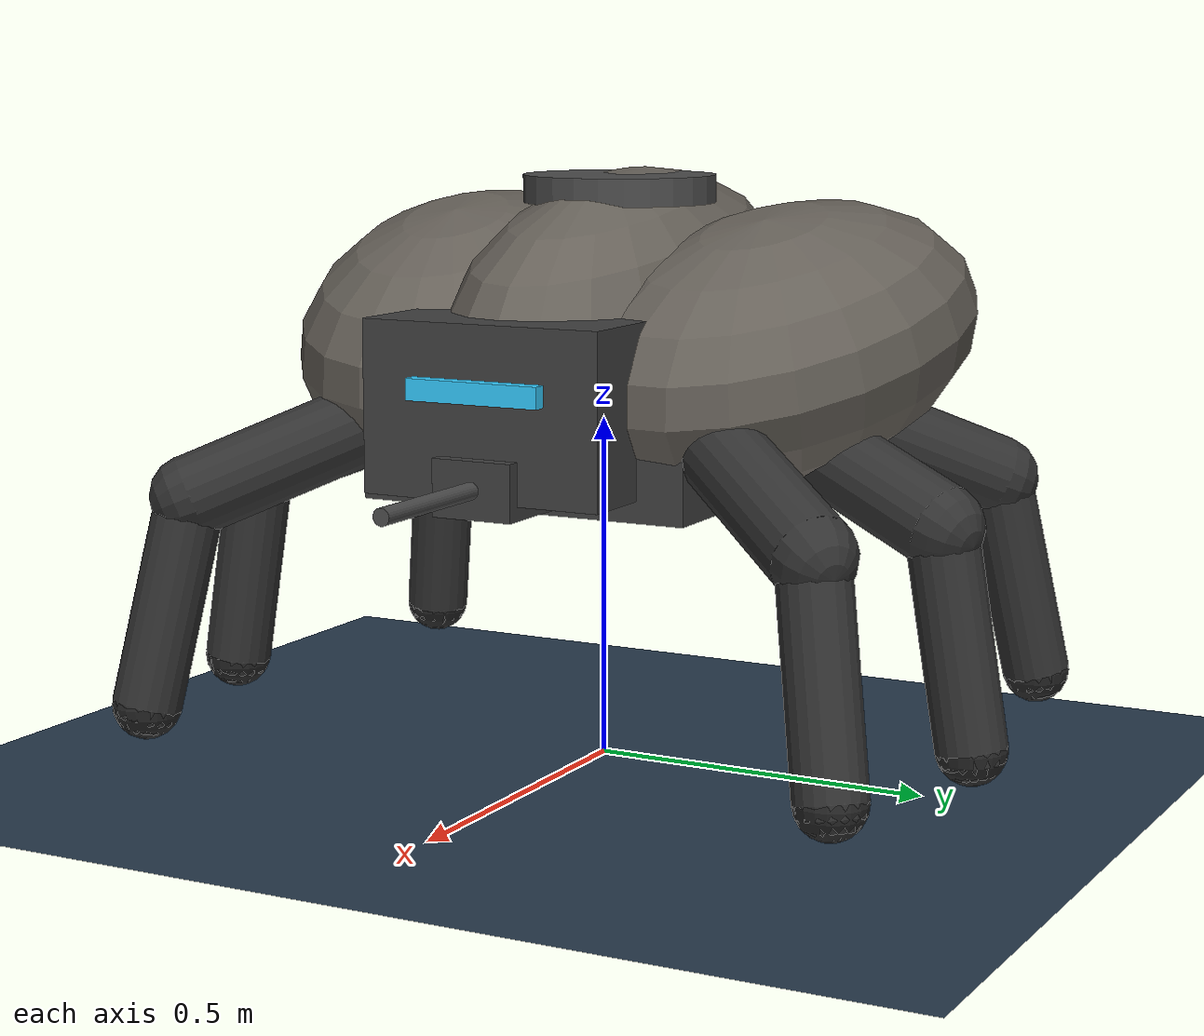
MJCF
<mujoco model="bastion">
  <compiler angle="degree" coordinate="local" inertiafromgeom="true"/>

  <option integrator="implicitfast" timestep="0.002" solver="Newton" iterations="200">
    <flag filterparent="enable"/>
  </option>

  <visual>
    <global offwidth="1200" offheight="800"/>
  </visual>

  <custom>
    <numeric data="0.0 0.0 0.50 1.0 0.0 0.0 0.0  0 0  0 0  0 0  0 0  0 0  0 0" name="init_qpos"/>
  </custom>

  <default>
    <joint armature="1" damping="1" limited="true"/>
    <default class="ankle">
      <joint armature="2" damping="10"/>
    </default>
    <geom conaffinity="0" condim="3" density="25.0" friction="1 0.5 0.5" margin="0.01" rgba="0.5 0.5 0.5 1"/>
  </default>

  <asset>
    <texture builtin="gradient" height="100" rgb1="1 1 1" rgb2="0.6 0.6 0.8" type="skybox" width="100"/>
    <texture builtin="checker" height="100" name="texplane" rgb1="0.2 0.3 0.4" rgb2="0.1 0.15 0.2" type="2d" width="100"/>
    <material name="MatPlane" reflectance="0.5" shininess="1" specular="1" texrepeat="60 60" texture="texplane"/>
    <material name="base_mat" rgba="0.25 0.25 0.25 1" specular="0.7" shininess="0.4"/>
    <material name="head_mat" rgba="0.30 0.30 0.30 1" specular="0.9" shininess="0.6"/>
    <material name="armor_mat" rgba="0.4 0.38 0.35 1" specular="0.8" shininess="0.5"/>
    <material name="leg_mat" rgba="0.20 0.20 0.20 1" specular="0.6" shininess="0.3"/>
    <material name="joint_glow" rgba="0.85 0.7 0.15 1" emission="0.5"/>
    <material name="eye_mat" rgba="0.2 0.8 1.0 1" emission="0.8"/>
    <material name="foot_mat" rgba="0.15 0.15 0.15 1" specular="0.5"/>
  </asset>

  <worldbody>
    <light cutoff="100" diffuse="1 1 1" dir="0 0 -1.3" directional="true" exponent="1" pos="0 0 1.3" specular="0.1 0.1 0.1"/>
    <geom conaffinity="1" condim="3" material="MatPlane" name="floor" pos="0 0 0" size="40 40 40" type="plane"/>

    <body name="torso" pos="0 0 0.50">
      <camera name="track" mode="trackcom" pos="0 -5 2" xyaxes="1 0 0 0 0.5 1"/>
      <joint armature="0" damping="0" limited="false" margin="0.01" name="root" pos="0 0 0" type="free"/>
      <site name="torso_site" pos="0 0 0" size="0.01"/>

      <geom name="chassis" type="box" size="0.25 0.25 0.10" material="base_mat"/>

      <geom name="carapace_center" type="ellipsoid" size="0.38 0.20 0.20" pos="-0.05 0 0.15" euler="0 10 0" material="armor_mat" contype="0" conaffinity="0" mass="3.0"/>
      <geom name="carapace_left" type="ellipsoid" size="0.35 0.25 0.18" pos="-0.05 0.25 0.12" euler="0 15 -15" material="armor_mat" contype="0" conaffinity="0" mass="0"/>
      <geom name="carapace_right" type="ellipsoid" size="0.35 0.25 0.18" pos="-0.05 -0.25 0.12" euler="0 15 15" material="armor_mat" contype="0" conaffinity="0" mass="0"/>

      <geom name="top_hatch" type="cylinder" size="0.14 0.02" pos="-0.05 0 0.33" material="head_mat" contype="0" conaffinity="0" mass="0"/>

      <geom name="face_shield" type="box" size="0.10 0.18 0.12" pos="0.26 0 0.05" material="base_mat" contype="0" conaffinity="0" mass="0"/>
      <geom name="eye_slit" type="box" size="0.02 0.10 0.015" pos="0.36 0 0.08" material="eye_mat" contype="0" conaffinity="0" mass="0"/>

      <geom name="gun_base" type="box" size="0.08 0.06 0.04" pos="0.30 0 -0.05" material="base_mat" contype="0" conaffinity="0" mass="0"/>
      <geom name="gun_barrel" type="cylinder" size="0.012 0.15" pos="0.45 0 -0.05" euler="0 90 0" material="head_mat" contype="0" conaffinity="0" mass="0"/>

      <body name="l1_upper" pos="0.20 0.28 0">
        <joint name="l1_hip" type="hinge" axis="0 0 1" range="-30 30" pos="0 0 0"/>
        <geom name="l1_upper_geom" fromto="0 0 0 0.15 0.20 -0.10" size="0.06" type="capsule" material="leg_mat"/>
        <geom name="l1_hip_glow" type="cylinder" size="0.04 0.02" pos="0 0 0" material="joint_glow" contype="0" conaffinity="0" mass="0"/>
        <body name="l1_lower" pos="0.15 0.20 -0.10">
          <joint name="l1_ankle" class="ankle" type="hinge" axis="1 -1 0" range="0 100" pos="0 0 0"/>
          <geom name="l1_lower_geom" fromto="0 0 0 0.05 0.05 -0.30" size="0.05" type="capsule" material="leg_mat"/>
          <geom name="l1_ankle_glow" type="cylinder" size="0.035 0.02" pos="0 0 0" euler="0 90 45" material="joint_glow" contype="0" conaffinity="0" mass="0"/>
          <body name="l1_foot" pos="0.05 0.05 -0.30">
            <geom name="l1_foot_geom" type="sphere" size="0.05" material="foot_mat"/>
          </body>
        </body>
      </body>

      <body name="l2_upper" pos="0 0.30 0">
        <joint name="l2_hip" type="hinge" axis="0 0 1" range="-45 45" pos="0 0 0"/>
        <geom name="l2_upper_geom" fromto="0 0 0 0.08 0.25 -0.10" size="0.06" type="capsule" material="leg_mat"/>
        <geom name="l2_hip_glow" type="cylinder" size="0.04 0.02" pos="0 0 0" material="joint_glow" contype="0" conaffinity="0" mass="0"/>
        <body name="l2_lower" pos="0.08 0.25 -0.10">
          <joint name="l2_ankle" class="ankle" type="hinge" axis="1 0 0" range="0 100" pos="0 0 0"/>
          <geom name="l2_lower_geom" fromto="0 0 0 0 0.05 -0.30" size="0.05" type="capsule" material="leg_mat"/>
          <geom name="l2_ankle_glow" type="cylinder" size="0.035 0.02" pos="0 0 0" euler="0 90 0" material="joint_glow" contype="0" conaffinity="0" mass="0"/>
          <body name="l2_foot" pos="0 0.05 -0.30">
            <geom name="l2_foot_geom" type="sphere" size="0.05" material="foot_mat"/>
          </body>
        </body>
      </body>

      <body name="l3_upper" pos="-0.20 0.28 0">
        <joint name="l3_hip" type="hinge" axis="0 0 1" range="-30 30" pos="0 0 0"/>
        <geom name="l3_upper_geom" fromto="0 0 0 -0.15 0.20 -0.10" size="0.06" type="capsule" material="leg_mat"/>
        <geom name="l3_hip_glow" type="cylinder" size="0.04 0.02" pos="0 0 0" material="joint_glow" contype="0" conaffinity="0" mass="0"/>
        <body name="l3_lower" pos="-0.15 0.20 -0.10">
          <joint name="l3_ankle" class="ankle" type="hinge" axis="1 1 0" range="0 100" pos="0 0 0"/>
          <geom name="l3_lower_geom" fromto="0 0 0 -0.05 0.05 -0.30" size="0.05" type="capsule" material="leg_mat"/>
          <geom name="l3_ankle_glow" type="cylinder" size="0.035 0.02" pos="0 0 0" euler="0 90 -45" material="joint_glow" contype="0" conaffinity="0" mass="0"/>
          <body name="l3_foot" pos="-0.05 0.05 -0.30">
            <geom name="l3_foot_geom" type="sphere" size="0.05" material="foot_mat"/>
          </body>
        </body>
      </body>

      <body name="r1_upper" pos="0.20 -0.28 0">
        <joint name="r1_hip" type="hinge" axis="0 0 1" range="-30 30" pos="0 0 0"/>
        <geom name="r1_upper_geom" fromto="0 0 0 0.15 -0.20 -0.10" size="0.06" type="capsule" material="leg_mat"/>
        <geom name="r1_hip_glow" type="cylinder" size="0.04 0.02" pos="0 0 0" material="joint_glow" contype="0" conaffinity="0" mass="0"/>
        <body name="r1_lower" pos="0.15 -0.20 -0.10">
          <joint name="r1_ankle" class="ankle" type="hinge" axis="-1 -1 0" range="0 100" pos="0 0 0"/>
          <geom name="r1_lower_geom" fromto="0 0 0 0.05 -0.05 -0.30" size="0.05" type="capsule" material="leg_mat"/>
          <geom name="r1_ankle_glow" type="cylinder" size="0.035 0.02" pos="0 0 0" euler="0 90 -45" material="joint_glow" contype="0" conaffinity="0" mass="0"/>
          <body name="r1_foot" pos="0.05 -0.05 -0.30">
            <geom name="r1_foot_geom" type="sphere" size="0.05" material="foot_mat"/>
          </body>
        </body>
      </body>

      <body name="r2_upper" pos="0 -0.30 0">
        <joint name="r2_hip" type="hinge" axis="0 0 1" range="-45 45" pos="0 0 0"/>
        <geom name="r2_upper_geom" fromto="0 0 0 0.08 -0.25 -0.10" size="0.06" type="capsule" material="leg_mat"/>
        <geom name="r2_hip_glow" type="cylinder" size="0.04 0.02" pos="0 0 0" material="joint_glow" contype="0" conaffinity="0" mass="0"/>
        <body name="r2_lower" pos="0.08 -0.25 -0.10">
          <joint name="r2_ankle" class="ankle" type="hinge" axis="-1 0 0" range="0 100" pos="0 0 0"/>
          <geom name="r2_lower_geom" fromto="0 0 0 0 -0.05 -0.30" size="0.05" type="capsule" material="leg_mat"/>
          <geom name="r2_ankle_glow" type="cylinder" size="0.035 0.02" pos="0 0 0" euler="0 90 0" material="joint_glow" contype="0" conaffinity="0" mass="0"/>
          <body name="r2_foot" pos="0 -0.05 -0.30">
            <geom name="r2_foot_geom" type="sphere" size="0.05" material="foot_mat"/>
          </body>
        </body>
      </body>

      <body name="r3_upper" pos="-0.20 -0.28 0">
        <joint name="r3_hip" type="hinge" axis="0 0 1" range="-30 30" pos="0 0 0"/>
        <geom name="r3_upper_geom" fromto="0 0 0 -0.15 -0.20 -0.10" size="0.06" type="capsule" material="leg_mat"/>
        <geom name="r3_hip_glow" type="cylinder" size="0.04 0.02" pos="0 0 0" material="joint_glow" contype="0" conaffinity="0" mass="0"/>
        <body name="r3_lower" pos="-0.15 -0.20 -0.10">
          <joint name="r3_ankle" class="ankle" type="hinge" axis="-1 1 0" range="0 100" pos="0 0 0"/>
          <geom name="r3_lower_geom" fromto="0 0 0 -0.05 -0.05 -0.30" size="0.05" type="capsule" material="leg_mat"/>
          <geom name="r3_ankle_glow" type="cylinder" size="0.035 0.02" pos="0 0 0" euler="0 90 45" material="joint_glow" contype="0" conaffinity="0" mass="0"/>
          <body name="r3_foot" pos="-0.05 -0.05 -0.30">
            <geom name="r3_foot_geom" type="sphere" size="0.05" material="foot_mat"/>
          </body>
        </body>
      </body>

    </body>
  </worldbody>

  <contact>
    <exclude body1="torso" body2="l1_upper"/>
    <exclude body1="torso" body2="l2_upper"/>
    <exclude body1="torso" body2="l3_upper"/>
    <exclude body1="torso" body2="r1_upper"/>
    <exclude body1="torso" body2="r2_upper"/>
    <exclude body1="torso" body2="r3_upper"/>
  </contact>

  <actuator>
    <motor joint="l1_hip"   ctrlrange="-1 1" ctrllimited="true" gear="150"/>
    <motor joint="l1_ankle" ctrlrange="-1 1" ctrllimited="true" gear="150"/>
    <motor joint="l2_hip"   ctrlrange="-1 1" ctrllimited="true" gear="150"/>
    <motor joint="l2_ankle" ctrlrange="-1 1" ctrllimited="true" gear="150"/>
    <motor joint="l3_hip"   ctrlrange="-1 1" ctrllimited="true" gear="150"/>
    <motor joint="l3_ankle" ctrlrange="-1 1" ctrllimited="true" gear="150"/>
    <motor joint="r1_hip"   ctrlrange="-1 1" ctrllimited="true" gear="150"/>
    <motor joint="r1_ankle" ctrlrange="-1 1" ctrllimited="true" gear="150"/>
    <motor joint="r2_hip"   ctrlrange="-1 1" ctrllimited="true" gear="150"/>
    <motor joint="r2_ankle" ctrlrange="-1 1" ctrllimited="true" gear="150"/>
    <motor joint="r3_hip"   ctrlrange="-1 1" ctrllimited="true" gear="150"/>
    <motor joint="r3_ankle" ctrlrange="-1 1" ctrllimited="true" gear="150"/>
  </actuator>

  <sensor>
    <jointpos name="l1_hip_pos" joint="l1_hip"/>
    <jointpos name="l1_ankle_pos" joint="l1_ankle"/>
    <jointpos name="l2_hip_pos" joint="l2_hip"/>
    <jointpos name="l2_ankle_pos" joint="l2_ankle"/>
    <jointpos name="l3_hip_pos" joint="l3_hip"/>
    <jointpos name="l3_ankle_pos" joint="l3_ankle"/>
    <jointpos name="r1_hip_pos" joint="r1_hip"/>
    <jointpos name="r1_ankle_pos" joint="r1_ankle"/>
    <jointpos name="r2_hip_pos" joint="r2_hip"/>
    <jointpos name="r2_ankle_pos" joint="r2_ankle"/>
    <jointpos name="r3_hip_pos" joint="r3_hip"/>
    <jointpos name="r3_ankle_pos" joint="r3_ankle"/>
    <jointvel name="l1_hip_vel" joint="l1_hip"/>
    <jointvel name="l1_ankle_vel" joint="l1_ankle"/>
    <jointvel name="l2_hip_vel" joint="l2_hip"/>
    <jointvel name="l2_ankle_vel" joint="l2_ankle"/>
    <jointvel name="l3_hip_vel" joint="l3_hip"/>
    <jointvel name="l3_ankle_vel" joint="l3_ankle"/>
    <jointvel name="r1_hip_vel" joint="r1_hip"/>
    <jointvel name="r1_ankle_vel" joint="r1_ankle"/>
    <jointvel name="r2_hip_vel" joint="r2_hip"/>
    <jointvel name="r2_ankle_vel" joint="r2_ankle"/>
    <jointvel name="r3_hip_vel" joint="r3_hip"/>
    <jointvel name="r3_ankle_vel" joint="r3_ankle"/>
    <accelerometer name="torso_accel" site="torso_site"/>
    <gyro name="torso_gyro" site="torso_site"/>
  </sensor>
</mujoco>
